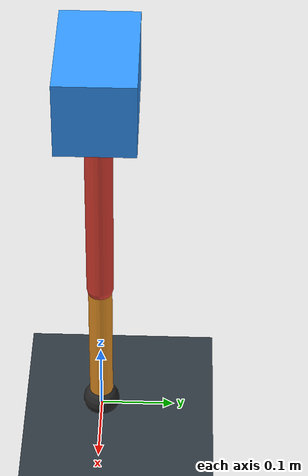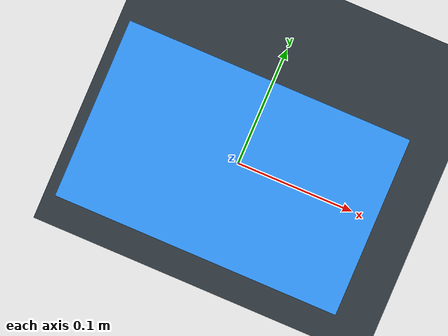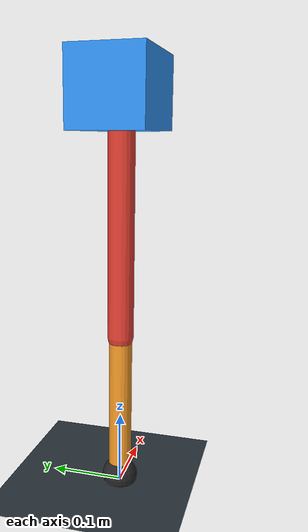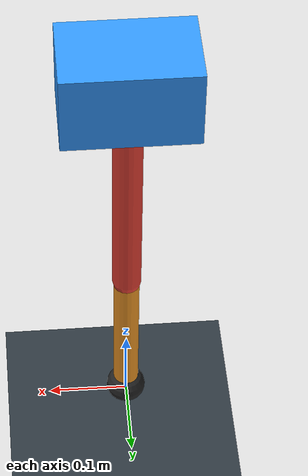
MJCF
<mujoco model="single_axis_two_bar">
  <compiler angle="radian" inertiafromgeom="true"/>
  <option timestep="0.001" integrator="implicitfast" gravity="0 0 -9.81"/>
  <default>
    <joint damping="0.08"/>
    <geom friction="1.2 0.01 0.0001" condim="3"/>
  </default>
  <worldbody>
    <geom name="floor" type="plane" size="5 5 0.1" rgba="0.18 0.22 0.25 1"/>
    <body name="carriage" pos="0 0 0.5445409101435631">
      <joint name="pole_slide" type="slide" axis="0 0 1"/>
      <geom name="payload" type="box" size="0.08 0.05 0.05" mass="2.9621396446913035" rgba="0.2 0.6 1 1"/>
      <body name="thigh" pos="0 0 0">
        <joint name="hip" type="hinge" axis="0 1 0"/>
        <geom name="thigh_link" type="capsule" fromto="0 0 0 0 0 -0.3286624137192513" size="0.018" mass="0.2341763126655977" rgba="0.9 0.25 0.2 1"/>
        <body name="shank" pos="0 0 -0.3286624137192513">
          <joint name="knee" type="hinge" axis="0 1 0"/>
          <geom name="shank_link" type="capsule" fromto="0 0 0 0 0 -0.20694677199576214" size="0.016" mass="0.14745230960730665" rgba="0.95 0.6 0.15 1"/>
          <geom name="foot" type="sphere" pos="0 0 -0.20694677199576214" size="0.025" mass="0.03" rgba="0.15 0.15 0.15 1"/>
          <site name="toe" pos="0 0 -0.20694677199576214" size="0.008"/>
        </body>
      </body>
    </body>
  </worldbody>
  <actuator>
    <motor name="hip_motor" joint="hip" ctrlrange="-35.54162080518268 35.54162080518268"/>
    <motor name="knee_motor" joint="knee" ctrlrange="-70.82262441630256 70.82262441630256"/>
  </actuator>
</mujoco>
